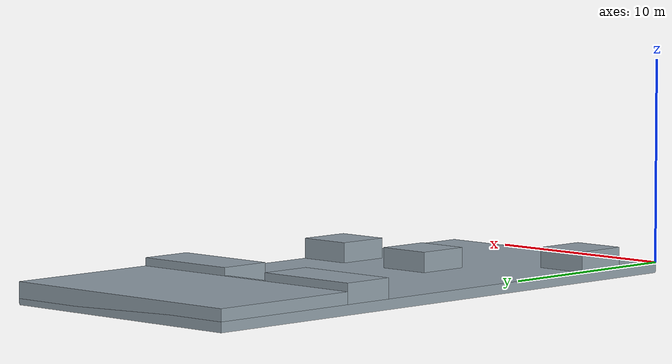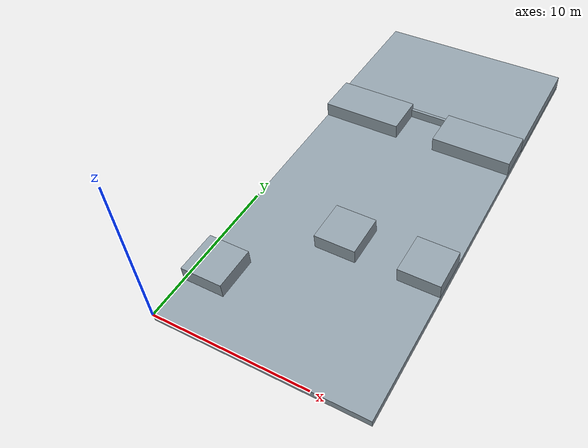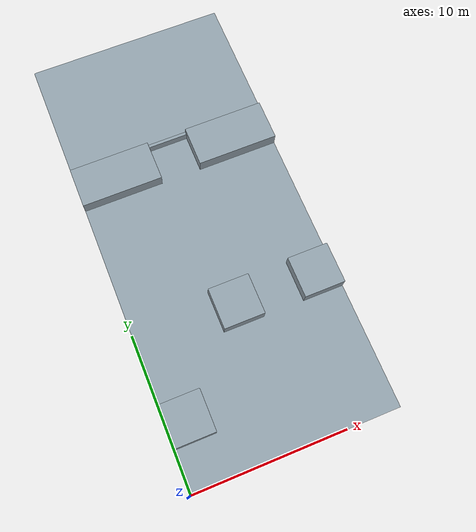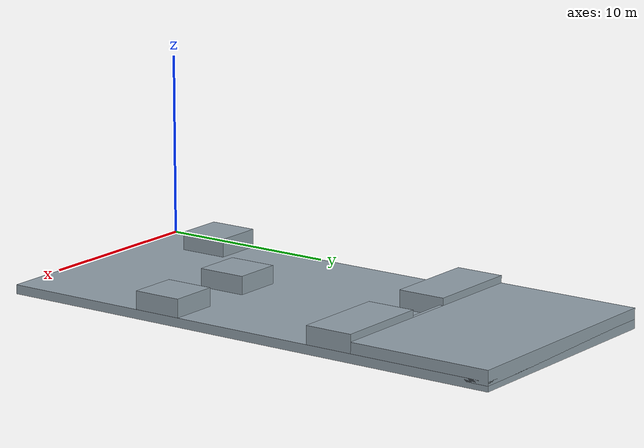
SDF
<?xml version="1.0"?>
<sdf version='1.6'>
<model name="navigation_environment">
  <link name="floor">
    <pose>0 0 0 0 0 0 </pose>
    <inertial>
      <mass>1</mass>
        <inertia>
          <ixx>1</ixx>
          <ixy>0</ixy>
          <ixz>0</ixz>
          <iyy>1</iyy>
          <iyz>0</iyz>
          <izz>1</izz>
        </inertia>
    </inertial>

    <visual name='ground'>
      <pose> 6.758775 14.869305 -0.25 0 0 0</pose>
      <geometry>
        <box>
          <size>13.51755 29.73861 0.5</size>
        </box>
      </geometry>
      <material>
        <diffuse>0.57 0.63 0.67 1.0</diffuse>
      </material>
    </visual>

    <visual name='place'>
      <pose>9.462285  1.351755 -0.25 0 0 0</pose>
      <geometry>
        <box>
          <size>2.70351 2.70351 .501</size>
        </box>
      </geometry>
      <material>
        <diffuse>216 250 222 1.0</diffuse>
      </material>
    </visual>

    <visual name='ground_2'>
      <pose> 6.758775 25.683345 0.2 0 0 0</pose>
      <geometry>
        <box>
          <size>13.51755 8.11053 .8</size>
        </box>
      </geometry>
      <material>
        <diffuse>0.57 0.63 0.67 1.0</diffuse>
      </material>
    </visual>

        <visual name='pick'>
      <pose> 4.055265 28.386855 0.2 0 0 0</pose>
      <geometry>
        <box>
          <size>2.70351 2.70351 .801</size>
        </box>
      </geometry>
      <material>
        <diffuse>216 250 222 1.0</diffuse>
      </material>
    </visual>

    <visual name='wall_1'>
      <pose>2.70351 20.276325 0.5 0 0 0</pose>
      <geometry>
        <box>
          <size>5.40702 2.70351 1</size>
        </box>
      </geometry>
      <material>
        <diffuse>0.57 0.63 0.67 1</diffuse>
      </material>
    </visual>

    <visual name='wall_2'>
      <pose>10.81404 20.276325 0.5 0 0 0</pose>
      <geometry>
        <box>
          <size>5.40702 2.70351 1</size>
        </box>
      </geometry>
      <material>
        <diffuse>0.57 0.63 0.67 1</diffuse>
      </material>
    </visual>

    <visual name='box_1'>
      <pose>1.351755 4.055265 0.5 0 0 0</pose>
      <geometry>
        <box>
          <size>2.70351 2.70351 1</size>
        </box>
      </geometry>
      <material>
        <diffuse>0.57 0.63 0.67 1.0</diffuse>
      </material>
    </visual>

    <visual name='box_2'>
      <pose>6.75877551 9.462285 0.5 0 0 0</pose>
      <geometry>
        <box>
          <size>2.70351 2.70351 1</size>
        </box>
      </geometry>
      <material>
        <diffuse>0.57 0.63 0.67 1.0</diffuse>
      </material>
    </visual>

    <visual name='box_3'>
      <pose>12.165795 9.462285 0.5 0 0 0</pose>
      <geometry>
        <box>
          <size>2.70351 2.70351 1</size>
        </box>
      </geometry>
      <material>
        <diffuse>0.57 0.63 0.67 1.0</diffuse>
      </material>
    </visual>

    <visual name='step_1'>
      <pose>6.75877 20.484325 0 0 0 0</pose>
      <geometry>
        <box>
          <size>2.70351 2.2875 0.2</size>
        </box>
      </geometry>
      <material>
        <diffuse>50 205 50 1.0</diffuse>
      </material>
    </visual>

    <visual name='step_2'>
      <pose>6.75877 20.692325 0 0 0 0</pose>
      <geometry>
        <box>
          <size>2.70351 1.87151 0.4</size>
        </box>
      </geometry>
      <material>
        <diffuse>50 205 50 1.0</diffuse>
      </material>
    </visual>

    <visual name='step_3'>
      <pose>6.75877 20.900325 0 0 0 0</pose>
      <geometry>
        <box>
          <size>2.70351 1.45551 0.6</size>
        </box>
      </geometry>
      <material>
        <diffuse>50 205 50 1.0</diffuse>
      </material>
    </visual>

    <visual name='step_4'>
      <pose>6.75877 21.108325 0 0 0 0</pose>
      <geometry>
        <box>
          <size>2.70351 1.03951 0.8</size>
        </box>
      </geometry>
      <material>
        <diffuse>50 205 50 1.0</diffuse>
      </material>
    </visual>

    <visual name='step_5'>
      <pose>6.75877 21.316325 0 0 0 0</pose>
      <geometry>
        <box>
          <size>2.70351 0.62351 1</size>
        </box>
      </geometry>
      <material>
        <diffuse>50 205 50 1.0</diffuse>
      </material>
    </visual>

  <visual name='step_6'>
      <pose>6.75877 21.524325 0 0 0 0</pose>
      <geometry>
        <box>
          <size>2.70351 0.20751 1.2</size>
        </box>
      </geometry>
      <material>
        <diffuse>0.57 0.63 0.67 1.0</diffuse>
      </material>
    </visual>

   </link>
</model>
</sdf>
